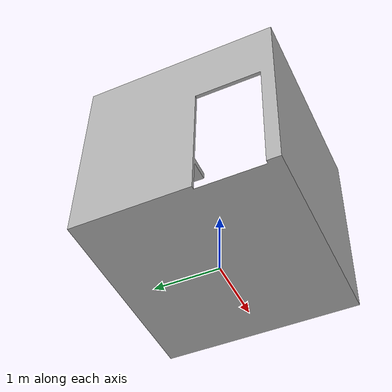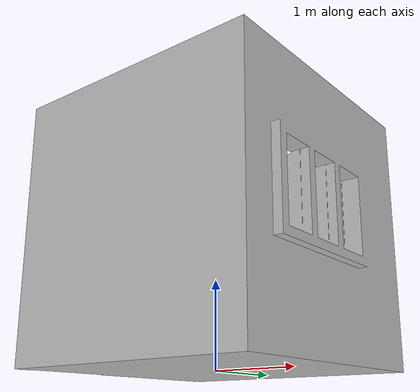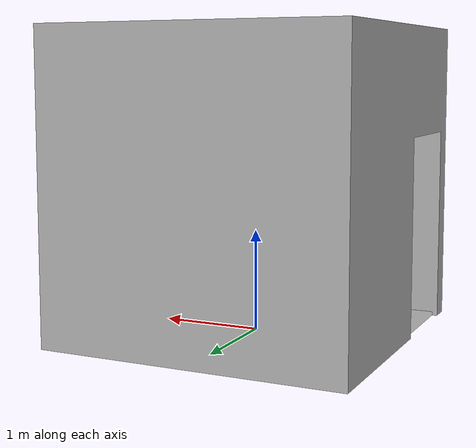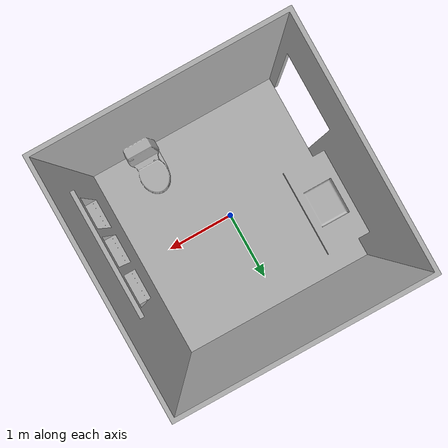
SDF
<sdf version='1.6'>
  <model name='bathroom_config_1'>
  <static>true</static>
    <link name='link'>
      <collision name="collision">
        <geometry>
          <mesh>
            <scale>1 1 1</scale>
            <uri>model://bathroom_config_1/meshes/bathroom_config_1.dae</uri>
          </mesh>
        </geometry>
      </collision>
      <visual name='visual'>
        <geometry>
          <mesh>
            <scale>1 1 1</scale>
            <uri>model://bathroom_config_1/meshes/bathroom_config_1.dae</uri>
          </mesh>
        </geometry>
      </visual>
    </link>
  </model>
</sdf>
